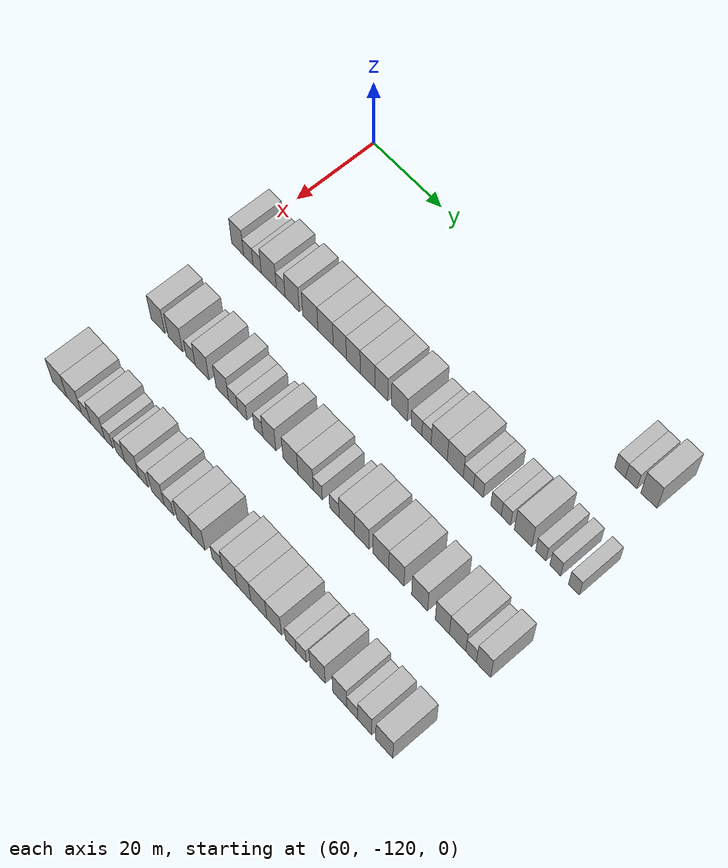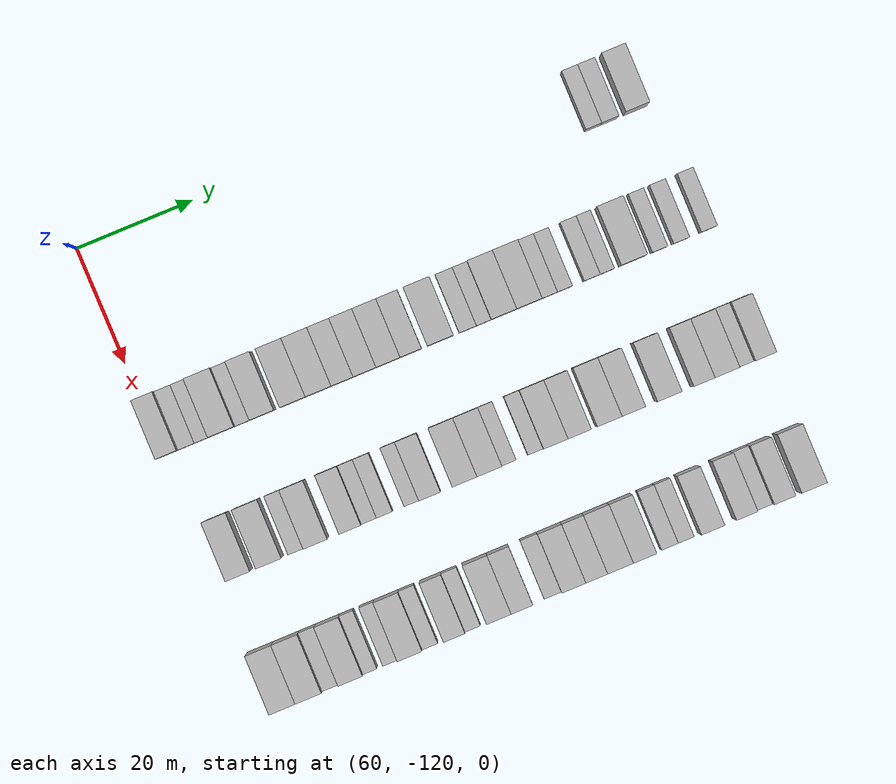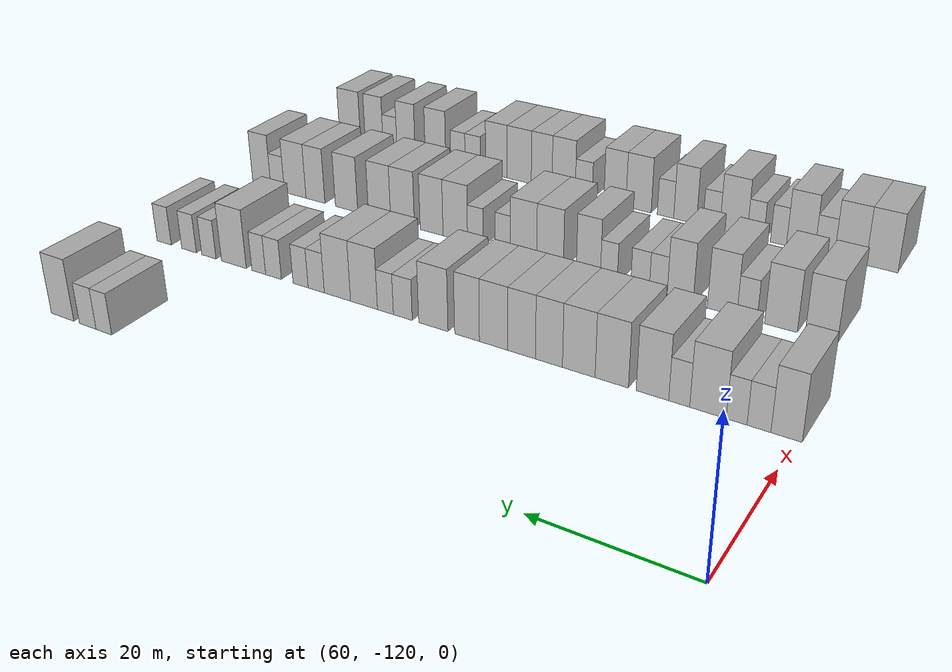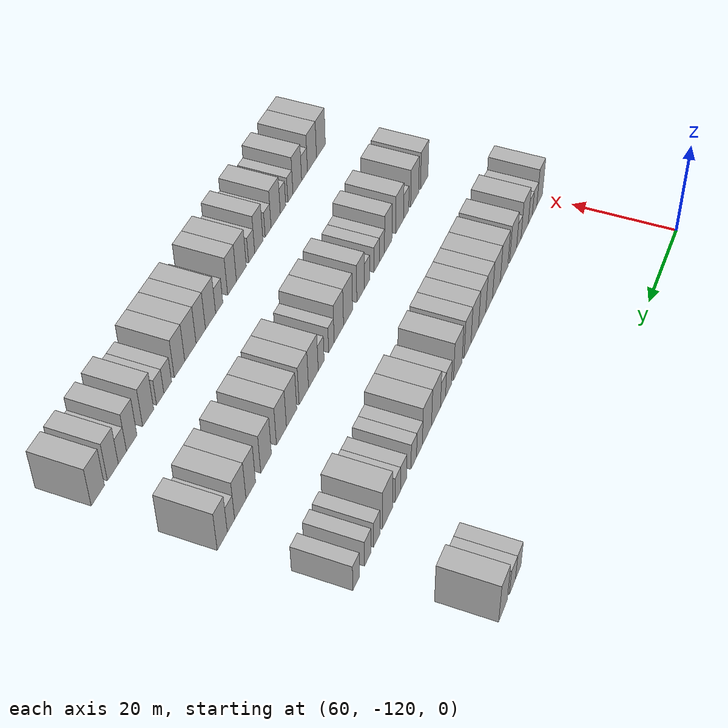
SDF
<sdf version="1.6">
 <world name="default">
  <model name="building_479">
   <static>1</static>
   <pose>69.0000 -36.6768 0 0.000000 0.000000 0.000000</pose>
   <link name="link">
    <pose>0 0 3.00 0 0 0</pose>
    <collision name="collision"><geometry><box><size>10.0000 2.7425 6.0000</size></box></geometry></collision>
    <visual name="visual">
     <cast_shadows>0</cast_shadows>
     <geometry><box><size>10.0000 2.7425 6.0000</size></box></geometry>
     <material>
      <script>
       <uri>model://HANNAS_wall/materials/scripts</uri>
       <uri>model://HANNAS_wall/materials/textures</uri>
       <name>vrc/HANNAS_wall</name>
      </script>
     </material>
    </visual>
   </link>
  </model>
  <model name="building_480">
   <static>1</static>
   <pose>69.0000 -33.8319 0 0.000000 0.000000 0.000000</pose>
   <link name="link">
    <pose>0 0 3.00 0 0 0</pose>
    <collision name="collision"><geometry><box><size>10.0000 2.9474 6.0000</size></box></geometry></collision>
    <visual name="visual">
     <cast_shadows>0</cast_shadows>
     <geometry><box><size>10.0000 2.9474 6.0000</size></box></geometry>
     <material>
      <script>
       <uri>model://HANNAS_wall/materials/scripts</uri>
       <uri>model://HANNAS_wall/materials/textures</uri>
       <name>vrc/HANNAS_wall</name>
      </script>
     </material>
    </visual>
   </link>
  </model>
  <model name="building_481">
   <static>1</static>
   <pose>69.0000 -29.3113 0 0.000000 0.000000 0.000000</pose>
   <link name="link">
    <pose>0 0 4.50 0 0 0</pose>
    <collision name="collision"><geometry><box><size>10.0000 4.0937 9.0000</size></box></geometry></collision>
    <visual name="visual">
     <cast_shadows>0</cast_shadows>
     <geometry><box><size>10.0000 4.0937 9.0000</size></box></geometry>
     <material>
      <script>
       <uri>model://HANNAS_wall/materials/scripts</uri>
       <uri>model://HANNAS_wall/materials/textures</uri>
       <name>vrc/HANNAS_wall</name>
      </script>
     </material>
    </visual>
   </link>
  </model>
  <model name="building_636">
   <static>1</static>
   <pose>91.0000 -118.8752 0 0.000000 0.000000 0.000000</pose>
   <link name="link">
    <pose>0 0 4.50 0 0 0</pose>
    <collision name="collision"><geometry><box><size>10.0000 3.6284 9.0000</size></box></geometry></collision>
    <visual name="visual">
     <cast_shadows>0</cast_shadows>
     <geometry><box><size>10.0000 3.6284 9.0000</size></box></geometry>
     <material>
      <script>
       <uri>model://HANNAS_wall/materials/scripts</uri>
       <uri>model://HANNAS_wall/materials/textures</uri>
       <name>vrc/HANNAS_wall</name>
      </script>
     </material>
    </visual>
   </link>
  </model>
  <model name="building_637">
   <static>1</static>
   <pose>91.0000 -115.6536 0 0.000000 0.000000 0.000000</pose>
   <link name="link">
    <pose>0 0 3.00 0 0 0</pose>
    <collision name="collision"><geometry><box><size>10.0000 2.8148 6.0000</size></box></geometry></collision>
    <visual name="visual">
     <cast_shadows>0</cast_shadows>
     <geometry><box><size>10.0000 2.8148 6.0000</size></box></geometry>
     <material>
      <script>
       <uri>model://HANNAS_wall/materials/scripts</uri>
       <uri>model://HANNAS_wall/materials/textures</uri>
       <name>vrc/HANNAS_wall</name>
      </script>
     </material>
    </visual>
   </link>
  </model>
  <model name="building_638">
   <static>1</static>
   <pose>91.0000 -113.0004 0 0.000000 0.000000 0.000000</pose>
   <link name="link">
    <pose>0 0 3.00 0 0 0</pose>
    <collision name="collision"><geometry><box><size>10.0000 2.4915 6.0000</size></box></geometry></collision>
    <visual name="visual">
     <cast_shadows>0</cast_shadows>
     <geometry><box><size>10.0000 2.4915 6.0000</size></box></geometry>
     <material>
      <script>
       <uri>model://HANNAS_wall/materials/scripts</uri>
       <uri>model://HANNAS_wall/materials/textures</uri>
       <name>vrc/HANNAS_wall</name>
      </script>
     </material>
    </visual>
   </link>
  </model>
  <model name="building_639">
   <static>1</static>
   <pose>91.0000 -109.5218 0 0.000000 0.000000 0.000000</pose>
   <link name="link">
    <pose>0 0 4.50 0 0 0</pose>
    <collision name="collision"><geometry><box><size>10.0000 4.4657 9.0000</size></box></geometry></collision>
    <visual name="visual">
     <cast_shadows>0</cast_shadows>
     <geometry><box><size>10.0000 4.4657 9.0000</size></box></geometry>
     <material>
      <script>
       <uri>model://HANNAS_wall/materials/scripts</uri>
       <uri>model://HANNAS_wall/materials/textures</uri>
       <name>vrc/HANNAS_wall</name>
      </script>
     </material>
    </visual>
   </link>
  </model>
  <model name="building_640">
   <static>1</static>
   <pose>91.0000 -105.9780 0 0.000000 0.000000 0.000000</pose>
   <link name="link">
    <pose>0 0 3.00 0 0 0</pose>
    <collision name="collision"><geometry><box><size>10.0000 2.6220 6.0000</size></box></geometry></collision>
    <visual name="visual">
     <cast_shadows>0</cast_shadows>
     <geometry><box><size>10.0000 2.6220 6.0000</size></box></geometry>
     <material>
      <script>
       <uri>model://HANNAS_wall/materials/scripts</uri>
       <uri>model://HANNAS_wall/materials/textures</uri>
       <name>vrc/HANNAS_wall</name>
      </script>
     </material>
    </visual>
   </link>
  </model>
  <model name="building_641">
   <static>1</static>
   <pose>91.0000 -102.5913 0 0.000000 0.000000 0.000000</pose>
   <link name="link">
    <pose>0 0 4.50 0 0 0</pose>
    <collision name="collision"><geometry><box><size>10.0000 4.1512 9.0000</size></box></geometry></collision>
    <visual name="visual">
     <cast_shadows>0</cast_shadows>
     <geometry><box><size>10.0000 4.1512 9.0000</size></box></geometry>
     <material>
      <script>
       <uri>model://HANNAS_wall/materials/scripts</uri>
       <uri>model://HANNAS_wall/materials/textures</uri>
       <name>vrc/HANNAS_wall</name>
      </script>
     </material>
    </visual>
   </link>
  </model>
  <model name="building_642">
   <static>1</static>
   <pose>91.0000 -97.3191 0 0.000000 0.000000 0.000000</pose>
   <link name="link">
    <pose>0 0 4.50 0 0 0</pose>
    <collision name="collision"><geometry><box><size>10.0000 4.3933 9.0000</size></box></geometry></collision>
    <visual name="visual">
     <cast_shadows>0</cast_shadows>
     <geometry><box><size>10.0000 4.3933 9.0000</size></box></geometry>
     <material>
      <script>
       <uri>model://HANNAS_wall/materials/scripts</uri>
       <uri>model://HANNAS_wall/materials/textures</uri>
       <name>vrc/HANNAS_wall</name>
      </script>
     </material>
    </visual>
   </link>
  </model>
  <model name="building_643">
   <static>1</static>
   <pose>91.0000 -92.9194 0 0.000000 0.000000 0.000000</pose>
   <link name="link">
    <pose>0 0 4.50 0 0 0</pose>
    <collision name="collision"><geometry><box><size>10.0000 4.4061 9.0000</size></box></geometry></collision>
    <visual name="visual">
     <cast_shadows>0</cast_shadows>
     <geometry><box><size>10.0000 4.4061 9.0000</size></box></geometry>
     <material>
      <script>
       <uri>model://HANNAS_wall/materials/scripts</uri>
       <uri>model://HANNAS_wall/materials/textures</uri>
       <name>vrc/HANNAS_wall</name>
      </script>
     </material>
    </visual>
   </link>
  </model>
  <model name="building_644">
   <static>1</static>
   <pose>91.0000 -88.8461 0 0.000000 0.000000 0.000000</pose>
   <link name="link">
    <pose>0 0 4.50 0 0 0</pose>
    <collision name="collision"><geometry><box><size>10.0000 3.7405 9.0000</size></box></geometry></collision>
    <visual name="visual">
     <cast_shadows>0</cast_shadows>
     <geometry><box><size>10.0000 3.7405 9.0000</size></box></geometry>
     <material>
      <script>
       <uri>model://HANNAS_wall/materials/scripts</uri>
       <uri>model://HANNAS_wall/materials/textures</uri>
       <name>vrc/HANNAS_wall</name>
      </script>
     </material>
    </visual>
   </link>
  </model>
  <model name="building_645">
   <static>1</static>
   <pose>91.0000 -85.0175 0 0.000000 0.000000 0.000000</pose>
   <link name="link">
    <pose>0 0 4.50 0 0 0</pose>
    <collision name="collision"><geometry><box><size>10.0000 3.9166 9.0000</size></box></geometry></collision>
    <visual name="visual">
     <cast_shadows>0</cast_shadows>
     <geometry><box><size>10.0000 3.9166 9.0000</size></box></geometry>
     <material>
      <script>
       <uri>model://HANNAS_wall/materials/scripts</uri>
       <uri>model://HANNAS_wall/materials/textures</uri>
       <name>vrc/HANNAS_wall</name>
      </script>
     </material>
    </visual>
   </link>
  </model>
  <model name="building_646">
   <static>1</static>
   <pose>91.0000 -81.0144 0 0.000000 0.000000 0.000000</pose>
   <link name="link">
    <pose>0 0 4.50 0 0 0</pose>
    <collision name="collision"><geometry><box><size>10.0000 4.0896 9.0000</size></box></geometry></collision>
    <visual name="visual">
     <cast_shadows>0</cast_shadows>
     <geometry><box><size>10.0000 4.0896 9.0000</size></box></geometry>
     <material>
      <script>
       <uri>model://HANNAS_wall/materials/scripts</uri>
       <uri>model://HANNAS_wall/materials/textures</uri>
       <name>vrc/HANNAS_wall</name>
      </script>
     </material>
    </visual>
   </link>
  </model>
  <model name="building_647">
   <static>1</static>
   <pose>91.0000 -77.1487 0 0.000000 0.000000 0.000000</pose>
   <link name="link">
    <pose>0 0 4.50 0 0 0</pose>
    <collision name="collision"><geometry><box><size>10.0000 3.6418 9.0000</size></box></geometry></collision>
    <visual name="visual">
     <cast_shadows>0</cast_shadows>
     <geometry><box><size>10.0000 3.6418 9.0000</size></box></geometry>
     <material>
      <script>
       <uri>model://HANNAS_wall/materials/scripts</uri>
       <uri>model://HANNAS_wall/materials/textures</uri>
       <name>vrc/HANNAS_wall</name>
      </script>
     </material>
    </visual>
   </link>
  </model>
  <model name="building_648">
   <static>1</static>
   <pose>91.0000 -72.1055 0 0.000000 0.000000 0.000000</pose>
   <link name="link">
    <pose>0 0 4.50 0 0 0</pose>
    <collision name="collision"><geometry><box><size>10.0000 4.4446 9.0000</size></box></geometry></collision>
    <visual name="visual">
     <cast_shadows>0</cast_shadows>
     <geometry><box><size>10.0000 4.4446 9.0000</size></box></geometry>
     <material>
      <script>
       <uri>model://HANNAS_wall/materials/scripts</uri>
       <uri>model://HANNAS_wall/materials/textures</uri>
       <name>vrc/HANNAS_wall</name>
      </script>
     </material>
    </visual>
   </link>
  </model>
  <model name="building_649">
   <static>1</static>
   <pose>91.0000 -67.4160 0 0.000000 0.000000 0.000000</pose>
   <link name="link">
    <pose>0 0 3.00 0 0 0</pose>
    <collision name="collision"><geometry><box><size>10.0000 2.9343 6.0000</size></box></geometry></collision>
    <visual name="visual">
     <cast_shadows>0</cast_shadows>
     <geometry><box><size>10.0000 2.9343 6.0000</size></box></geometry>
     <material>
      <script>
       <uri>model://HANNAS_wall/materials/scripts</uri>
       <uri>model://HANNAS_wall/materials/textures</uri>
       <name>vrc/HANNAS_wall</name>
      </script>
     </material>
    </visual>
   </link>
  </model>
  <model name="building_650">
   <static>1</static>
   <pose>91.0000 -64.6864 0 0.000000 0.000000 0.000000</pose>
   <link name="link">
    <pose>0 0 3.00 0 0 0</pose>
    <collision name="collision"><geometry><box><size>10.0000 2.5249 6.0000</size></box></geometry></collision>
    <visual name="visual">
     <cast_shadows>0</cast_shadows>
     <geometry><box><size>10.0000 2.5249 6.0000</size></box></geometry>
     <material>
      <script>
       <uri>model://HANNAS_wall/materials/scripts</uri>
       <uri>model://HANNAS_wall/materials/textures</uri>
       <name>vrc/HANNAS_wall</name>
      </script>
     </material>
    </visual>
   </link>
  </model>
  <model name="building_651">
   <static>1</static>
   <pose>91.0000 -61.2576 0 0.000000 0.000000 0.000000</pose>
   <link name="link">
    <pose>0 0 4.50 0 0 0</pose>
    <collision name="collision"><geometry><box><size>10.0000 4.3327 9.0000</size></box></geometry></collision>
    <visual name="visual">
     <cast_shadows>0</cast_shadows>
     <geometry><box><size>10.0000 4.3327 9.0000</size></box></geometry>
     <material>
      <script>
       <uri>model://HANNAS_wall/materials/scripts</uri>
       <uri>model://HANNAS_wall/materials/textures</uri>
       <name>vrc/HANNAS_wall</name>
      </script>
     </material>
    </visual>
   </link>
  </model>
  <model name="building_652">
   <static>1</static>
   <pose>91.0000 -56.9258 0 0.000000 0.000000 0.000000</pose>
   <link name="link">
    <pose>0 0 4.50 0 0 0</pose>
    <collision name="collision"><geometry><box><size>10.0000 4.3310 9.0000</size></box></geometry></collision>
    <visual name="visual">
     <cast_shadows>0</cast_shadows>
     <geometry><box><size>10.0000 4.3310 9.0000</size></box></geometry>
     <material>
      <script>
       <uri>model://HANNAS_wall/materials/scripts</uri>
       <uri>model://HANNAS_wall/materials/textures</uri>
       <name>vrc/HANNAS_wall</name>
      </script>
     </material>
    </visual>
   </link>
  </model>
  <model name="building_653">
   <static>1</static>
   <pose>91.0000 -53.4036 0 0.000000 0.000000 0.000000</pose>
   <link name="link">
    <pose>0 0 3.00 0 0 0</pose>
    <collision name="collision"><geometry><box><size>10.0000 2.7133 6.0000</size></box></geometry></collision>
    <visual name="visual">
     <cast_shadows>0</cast_shadows>
     <geometry><box><size>10.0000 2.7133 6.0000</size></box></geometry>
     <material>
      <script>
       <uri>model://HANNAS_wall/materials/scripts</uri>
       <uri>model://HANNAS_wall/materials/textures</uri>
       <name>vrc/HANNAS_wall</name>
      </script>
     </material>
    </visual>
   </link>
  </model>
  <model name="building_654">
   <static>1</static>
   <pose>91.0000 -50.7612 0 0.000000 0.000000 0.000000</pose>
   <link name="link">
    <pose>0 0 3.00 0 0 0</pose>
    <collision name="collision"><geometry><box><size>10.0000 2.5716 6.0000</size></box></geometry></collision>
    <visual name="visual">
     <cast_shadows>0</cast_shadows>
     <geometry><box><size>10.0000 2.5716 6.0000</size></box></geometry>
     <material>
      <script>
       <uri>model://HANNAS_wall/materials/scripts</uri>
       <uri>model://HANNAS_wall/materials/textures</uri>
       <name>vrc/HANNAS_wall</name>
      </script>
     </material>
    </visual>
   </link>
  </model>
  <model name="building_655">
   <static>1</static>
   <pose>91.0000 -46.0979 0 0.000000 0.000000 0.000000</pose>
   <link name="link">
    <pose>0 0 3.00 0 0 0</pose>
    <collision name="collision"><geometry><box><size>10.0000 2.7552 6.0000</size></box></geometry></collision>
    <visual name="visual">
     <cast_shadows>0</cast_shadows>
     <geometry><box><size>10.0000 2.7552 6.0000</size></box></geometry>
     <material>
      <script>
       <uri>model://HANNAS_wall/materials/scripts</uri>
       <uri>model://HANNAS_wall/materials/textures</uri>
       <name>vrc/HANNAS_wall</name>
      </script>
     </material>
    </visual>
   </link>
  </model>
  <model name="building_656">
   <static>1</static>
   <pose>91.0000 -43.5062 0 0.000000 0.000000 0.000000</pose>
   <link name="link">
    <pose>0 0 3.00 0 0 0</pose>
    <collision name="collision"><geometry><box><size>10.0000 2.4282 6.0000</size></box></geometry></collision>
    <visual name="visual">
     <cast_shadows>0</cast_shadows>
     <geometry><box><size>10.0000 2.4282 6.0000</size></box></geometry>
     <material>
      <script>
       <uri>model://HANNAS_wall/materials/scripts</uri>
       <uri>model://HANNAS_wall/materials/textures</uri>
       <name>vrc/HANNAS_wall</name>
      </script>
     </material>
    </visual>
   </link>
  </model>
  <model name="building_657">
   <static>1</static>
   <pose>91.0000 -39.0481 0 0.000000 0.000000 0.000000</pose>
   <link name="link">
    <pose>0 0 4.50 0 0 0</pose>
    <collision name="collision"><geometry><box><size>10.0000 4.4879 9.0000</size></box></geometry></collision>
    <visual name="visual">
     <cast_shadows>0</cast_shadows>
     <geometry><box><size>10.0000 4.4879 9.0000</size></box></geometry>
     <material>
      <script>
       <uri>model://HANNAS_wall/materials/scripts</uri>
       <uri>model://HANNAS_wall/materials/textures</uri>
       <name>vrc/HANNAS_wall</name>
      </script>
     </material>
    </visual>
   </link>
  </model>
  <model name="building_658">
   <static>1</static>
   <pose>91.0000 -34.4827 0 0.000000 0.000000 0.000000</pose>
   <link name="link">
    <pose>0 0 3.00 0 0 0</pose>
    <collision name="collision"><geometry><box><size>10.0000 2.6431 6.0000</size></box></geometry></collision>
    <visual name="visual">
     <cast_shadows>0</cast_shadows>
     <geometry><box><size>10.0000 2.6431 6.0000</size></box></geometry>
     <material>
      <script>
       <uri>model://HANNAS_wall/materials/scripts</uri>
       <uri>model://HANNAS_wall/materials/textures</uri>
       <name>vrc/HANNAS_wall</name>
      </script>
     </material>
    </visual>
   </link>
  </model>
  <model name="building_659">
   <static>1</static>
   <pose>91.0000 -30.7878 0 0.000000 0.000000 0.000000</pose>
   <link name="link">
    <pose>0 0 3.00 0 0 0</pose>
    <collision name="collision"><geometry><box><size>10.0000 2.7466 6.0000</size></box></geometry></collision>
    <visual name="visual">
     <cast_shadows>0</cast_shadows>
     <geometry><box><size>10.0000 2.7466 6.0000</size></box></geometry>
     <material>
      <script>
       <uri>model://HANNAS_wall/materials/scripts</uri>
       <uri>model://HANNAS_wall/materials/textures</uri>
       <name>vrc/HANNAS_wall</name>
      </script>
     </material>
    </visual>
   </link>
  </model>
  <model name="building_660">
   <static>1</static>
   <pose>91.0000 -26.0449 0 0.000000 0.000000 0.000000</pose>
   <link name="link">
    <pose>0 0 3.00 0 0 0</pose>
    <collision name="collision"><geometry><box><size>10.0000 2.7392 6.0000</size></box></geometry></collision>
    <visual name="visual">
     <cast_shadows>0</cast_shadows>
     <geometry><box><size>10.0000 2.7392 6.0000</size></box></geometry>
     <material>
      <script>
       <uri>model://HANNAS_wall/materials/scripts</uri>
       <uri>model://HANNAS_wall/materials/textures</uri>
       <name>vrc/HANNAS_wall</name>
      </script>
     </material>
    </visual>
   </link>
  </model>
  <model name="building_829">
   <static>1</static>
   <pose>113.0000 -115.8090 0 0.000000 0.000000 0.000000</pose>
   <link name="link">
    <pose>0 0 4.50 0 0 0</pose>
    <collision name="collision"><geometry><box><size>10.0000 4.1792 9.0000</size></box></geometry></collision>
    <visual name="visual">
     <cast_shadows>0</cast_shadows>
     <geometry><box><size>10.0000 4.1792 9.0000</size></box></geometry>
     <material>
      <script>
       <uri>model://HANNAS_wall/materials/scripts</uri>
       <uri>model://HANNAS_wall/materials/textures</uri>
       <name>vrc/HANNAS_wall</name>
      </script>
     </material>
    </visual>
   </link>
  </model>
  <model name="building_830">
   <static>1</static>
   <pose>113.0000 -110.5417 0 0.000000 0.000000 0.000000</pose>
   <link name="link">
    <pose>0 0 4.50 0 0 0</pose>
    <collision name="collision"><geometry><box><size>10.0000 4.3555 9.0000</size></box></geometry></collision>
    <visual name="visual">
     <cast_shadows>0</cast_shadows>
     <geometry><box><size>10.0000 4.3555 9.0000</size></box></geometry>
     <material>
      <script>
       <uri>model://HANNAS_wall/materials/scripts</uri>
       <uri>model://HANNAS_wall/materials/textures</uri>
       <name>vrc/HANNAS_wall</name>
      </script>
     </material>
    </visual>
   </link>
  </model>
  <model name="building_831">
   <static>1</static>
   <pose>113.0000 -105.9945 0 0.000000 0.000000 0.000000</pose>
   <link name="link">
    <pose>0 0 3.00 0 0 0</pose>
    <collision name="collision"><geometry><box><size>10.0000 2.7388 6.0000</size></box></geometry></collision>
    <visual name="visual">
     <cast_shadows>0</cast_shadows>
     <geometry><box><size>10.0000 2.7388 6.0000</size></box></geometry>
     <material>
      <script>
       <uri>model://HANNAS_wall/materials/scripts</uri>
       <uri>model://HANNAS_wall/materials/textures</uri>
       <name>vrc/HANNAS_wall</name>
      </script>
     </material>
    </visual>
   </link>
  </model>
  <model name="building_832">
   <static>1</static>
   <pose>113.0000 -102.5790 0 0.000000 0.000000 0.000000</pose>
   <link name="link">
    <pose>0 0 4.50 0 0 0</pose>
    <collision name="collision"><geometry><box><size>10.0000 4.0920 9.0000</size></box></geometry></collision>
    <visual name="visual">
     <cast_shadows>0</cast_shadows>
     <geometry><box><size>10.0000 4.0920 9.0000</size></box></geometry>
     <material>
      <script>
       <uri>model://HANNAS_wall/materials/scripts</uri>
       <uri>model://HANNAS_wall/materials/textures</uri>
       <name>vrc/HANNAS_wall</name>
      </script>
     </material>
    </visual>
   </link>
  </model>
  <model name="building_833">
   <static>1</static>
   <pose>113.0000 -96.6682 0 0.000000 0.000000 0.000000</pose>
   <link name="link">
    <pose>0 0 4.50 0 0 0</pose>
    <collision name="collision"><geometry><box><size>10.0000 3.7296 9.0000</size></box></geometry></collision>
    <visual name="visual">
     <cast_shadows>0</cast_shadows>
     <geometry><box><size>10.0000 3.7296 9.0000</size></box></geometry>
     <material>
      <script>
       <uri>model://HANNAS_wall/materials/scripts</uri>
       <uri>model://HANNAS_wall/materials/textures</uri>
       <name>vrc/HANNAS_wall</name>
      </script>
     </material>
    </visual>
   </link>
  </model>
  <model name="building_834">
   <static>1</static>
   <pose>113.0000 -93.5089 0 0.000000 0.000000 0.000000</pose>
   <link name="link">
    <pose>0 0 3.00 0 0 0</pose>
    <collision name="collision"><geometry><box><size>10.0000 2.5890 6.0000</size></box></geometry></collision>
    <visual name="visual">
     <cast_shadows>0</cast_shadows>
     <geometry><box><size>10.0000 2.5890 6.0000</size></box></geometry>
     <material>
      <script>
       <uri>model://HANNAS_wall/materials/scripts</uri>
       <uri>model://HANNAS_wall/materials/textures</uri>
       <name>vrc/HANNAS_wall</name>
      </script>
     </material>
    </visual>
   </link>
  </model>
  <model name="building_835">
   <static>1</static>
   <pose>113.0000 -90.8488 0 0.000000 0.000000 0.000000</pose>
   <link name="link">
    <pose>0 0 3.00 0 0 0</pose>
    <collision name="collision"><geometry><box><size>10.0000 2.7312 6.0000</size></box></geometry></collision>
    <visual name="visual">
     <cast_shadows>0</cast_shadows>
     <geometry><box><size>10.0000 2.7312 6.0000</size></box></geometry>
     <material>
      <script>
       <uri>model://HANNAS_wall/materials/scripts</uri>
       <uri>model://HANNAS_wall/materials/textures</uri>
       <name>vrc/HANNAS_wall</name>
      </script>
     </material>
    </visual>
   </link>
  </model>
  <model name="building_836">
   <static>1</static>
   <pose>113.0000 -86.2087 0 0.000000 0.000000 0.000000</pose>
   <link name="link">
    <pose>0 0 3.00 0 0 0</pose>
    <collision name="collision"><geometry><box><size>10.0000 2.5492 6.0000</size></box></geometry></collision>
    <visual name="visual">
     <cast_shadows>0</cast_shadows>
     <geometry><box><size>10.0000 2.5492 6.0000</size></box></geometry>
     <material>
      <script>
       <uri>model://HANNAS_wall/materials/scripts</uri>
       <uri>model://HANNAS_wall/materials/textures</uri>
       <name>vrc/HANNAS_wall</name>
      </script>
     </material>
    </visual>
   </link>
  </model>
  <model name="building_837">
   <static>1</static>
   <pose>113.0000 -83.0885 0 0.000000 0.000000 0.000000</pose>
   <link name="link">
    <pose>0 0 4.50 0 0 0</pose>
    <collision name="collision"><geometry><box><size>10.0000 3.6912 9.0000</size></box></geometry></collision>
    <visual name="visual">
     <cast_shadows>0</cast_shadows>
     <geometry><box><size>10.0000 3.6912 9.0000</size></box></geometry>
     <material>
      <script>
       <uri>model://HANNAS_wall/materials/scripts</uri>
       <uri>model://HANNAS_wall/materials/textures</uri>
       <name>vrc/HANNAS_wall</name>
      </script>
     </material>
    </visual>
   </link>
  </model>
  <model name="building_838">
   <static>1</static>
   <pose>113.0000 -77.1343 0 0.000000 0.000000 0.000000</pose>
   <link name="link">
    <pose>0 0 4.50 0 0 0</pose>
    <collision name="collision"><geometry><box><size>10.0000 4.2171 9.0000</size></box></geometry></collision>
    <visual name="visual">
     <cast_shadows>0</cast_shadows>
     <geometry><box><size>10.0000 4.2171 9.0000</size></box></geometry>
     <material>
      <script>
       <uri>model://HANNAS_wall/materials/scripts</uri>
       <uri>model://HANNAS_wall/materials/textures</uri>
       <name>vrc/HANNAS_wall</name>
      </script>
     </material>
    </visual>
   </link>
  </model>
  <model name="building_839">
   <static>1</static>
   <pose>113.0000 -72.8920 0 0.000000 0.000000 0.000000</pose>
   <link name="link">
    <pose>0 0 4.50 0 0 0</pose>
    <collision name="collision"><geometry><box><size>10.0000 4.2676 9.0000</size></box></geometry></collision>
    <visual name="visual">
     <cast_shadows>0</cast_shadows>
     <geometry><box><size>10.0000 4.2676 9.0000</size></box></geometry>
     <material>
      <script>
       <uri>model://HANNAS_wall/materials/scripts</uri>
       <uri>model://HANNAS_wall/materials/textures</uri>
       <name>vrc/HANNAS_wall</name>
      </script>
     </material>
    </visual>
   </link>
  </model>
  <model name="building_840">
   <static>1</static>
   <pose>113.0000 -69.5211 0 0.000000 0.000000 0.000000</pose>
   <link name="link">
    <pose>0 0 3.00 0 0 0</pose>
    <collision name="collision"><geometry><box><size>10.0000 2.4742 6.0000</size></box></geometry></collision>
    <visual name="visual">
     <cast_shadows>0</cast_shadows>
     <geometry><box><size>10.0000 2.4742 6.0000</size></box></geometry>
     <material>
      <script>
       <uri>model://HANNAS_wall/materials/scripts</uri>
       <uri>model://HANNAS_wall/materials/textures</uri>
       <name>vrc/HANNAS_wall</name>
      </script>
     </material>
    </visual>
   </link>
  </model>
  <model name="building_841">
   <static>1</static>
   <pose>113.0000 -64.9840 0 0.000000 0.000000 0.000000</pose>
   <link name="link">
    <pose>0 0 3.00 0 0 0</pose>
    <collision name="collision"><geometry><box><size>10.0000 2.5999 6.0000</size></box></geometry></collision>
    <visual name="visual">
     <cast_shadows>0</cast_shadows>
     <geometry><box><size>10.0000 2.5999 6.0000</size></box></geometry>
     <material>
      <script>
       <uri>model://HANNAS_wall/materials/scripts</uri>
       <uri>model://HANNAS_wall/materials/textures</uri>
       <name>vrc/HANNAS_wall</name>
      </script>
     </material>
    </visual>
   </link>
  </model>
  <model name="building_842">
   <static>1</static>
   <pose>113.0000 -61.5987 0 0.000000 0.000000 0.000000</pose>
   <link name="link">
    <pose>0 0 4.50 0 0 0</pose>
    <collision name="collision"><geometry><box><size>10.0000 4.1709 9.0000</size></box></geometry></collision>
    <visual name="visual">
     <cast_shadows>0</cast_shadows>
     <geometry><box><size>10.0000 4.1709 9.0000</size></box></geometry>
     <material>
      <script>
       <uri>model://HANNAS_wall/materials/scripts</uri>
       <uri>model://HANNAS_wall/materials/textures</uri>
       <name>vrc/HANNAS_wall</name>
      </script>
     </material>
    </visual>
   </link>
  </model>
  <model name="building_843">
   <static>1</static>
   <pose>113.0000 -57.5251 0 0.000000 0.000000 0.000000</pose>
   <link name="link">
    <pose>0 0 4.50 0 0 0</pose>
    <collision name="collision"><geometry><box><size>10.0000 3.9763 9.0000</size></box></geometry></collision>
    <visual name="visual">
     <cast_shadows>0</cast_shadows>
     <geometry><box><size>10.0000 3.9763 9.0000</size></box></geometry>
     <material>
      <script>
       <uri>model://HANNAS_wall/materials/scripts</uri>
       <uri>model://HANNAS_wall/materials/textures</uri>
       <name>vrc/HANNAS_wall</name>
      </script>
     </material>
    </visual>
   </link>
  </model>
  <model name="building_844">
   <static>1</static>
   <pose>113.0000 -52.4184 0 0.000000 0.000000 0.000000</pose>
   <link name="link">
    <pose>0 0 4.50 0 0 0</pose>
    <collision name="collision"><geometry><box><size>10.0000 4.2371 9.0000</size></box></geometry></collision>
    <visual name="visual">
     <cast_shadows>0</cast_shadows>
     <geometry><box><size>10.0000 4.2371 9.0000</size></box></geometry>
     <material>
      <script>
       <uri>model://HANNAS_wall/materials/scripts</uri>
       <uri>model://HANNAS_wall/materials/textures</uri>
       <name>vrc/HANNAS_wall</name>
      </script>
     </material>
    </visual>
   </link>
  </model>
  <model name="building_845">
   <static>1</static>
   <pose>113.0000 -48.2871 0 0.000000 0.000000 0.000000</pose>
   <link name="link">
    <pose>0 0 4.50 0 0 0</pose>
    <collision name="collision"><geometry><box><size>10.0000 4.0256 9.0000</size></box></geometry></collision>
    <visual name="visual">
     <cast_shadows>0</cast_shadows>
     <geometry><box><size>10.0000 4.0256 9.0000</size></box></geometry>
     <material>
      <script>
       <uri>model://HANNAS_wall/materials/scripts</uri>
       <uri>model://HANNAS_wall/materials/textures</uri>
       <name>vrc/HANNAS_wall</name>
      </script>
     </material>
    </visual>
   </link>
  </model>
  <model name="building_846">
   <static>1</static>
   <pose>113.0000 -42.1886 0 0.000000 0.000000 0.000000</pose>
   <link name="link">
    <pose>0 0 4.50 0 0 0</pose>
    <collision name="collision"><geometry><box><size>10.0000 4.1714 9.0000</size></box></geometry></collision>
    <visual name="visual">
     <cast_shadows>0</cast_shadows>
     <geometry><box><size>10.0000 4.1714 9.0000</size></box></geometry>
     <material>
      <script>
       <uri>model://HANNAS_wall/materials/scripts</uri>
       <uri>model://HANNAS_wall/materials/textures</uri>
       <name>vrc/HANNAS_wall</name>
      </script>
     </material>
    </visual>
   </link>
  </model>
  <model name="building_847">
   <static>1</static>
   <pose>113.0000 -36.2924 0 0.000000 0.000000 0.000000</pose>
   <link name="link">
    <pose>0 0 4.50 0 0 0</pose>
    <collision name="collision"><geometry><box><size>10.0000 3.6211 9.0000</size></box></geometry></collision>
    <visual name="visual">
     <cast_shadows>0</cast_shadows>
     <geometry><box><size>10.0000 3.6211 9.0000</size></box></geometry>
     <material>
      <script>
       <uri>model://HANNAS_wall/materials/scripts</uri>
       <uri>model://HANNAS_wall/materials/textures</uri>
       <name>vrc/HANNAS_wall</name>
      </script>
     </material>
    </visual>
   </link>
  </model>
  <model name="building_848">
   <static>1</static>
   <pose>113.0000 -32.3692 0 0.000000 0.000000 0.000000</pose>
   <link name="link">
    <pose>0 0 4.50 0 0 0</pose>
    <collision name="collision"><geometry><box><size>10.0000 4.2254 9.0000</size></box></geometry></collision>
    <visual name="visual">
     <cast_shadows>0</cast_shadows>
     <geometry><box><size>10.0000 4.2254 9.0000</size></box></geometry>
     <material>
      <script>
       <uri>model://HANNAS_wall/materials/scripts</uri>
       <uri>model://HANNAS_wall/materials/textures</uri>
       <name>vrc/HANNAS_wall</name>
      </script>
     </material>
    </visual>
   </link>
  </model>
  <model name="building_849">
   <static>1</static>
   <pose>113.0000 -28.9207 0 0.000000 0.000000 0.000000</pose>
   <link name="link">
    <pose>0 0 3.00 0 0 0</pose>
    <collision name="collision"><geometry><box><size>10.0000 2.6716 6.0000</size></box></geometry></collision>
    <visual name="visual">
     <cast_shadows>0</cast_shadows>
     <geometry><box><size>10.0000 2.6716 6.0000</size></box></geometry>
     <material>
      <script>
       <uri>model://HANNAS_wall/materials/scripts</uri>
       <uri>model://HANNAS_wall/materials/textures</uri>
       <name>vrc/HANNAS_wall</name>
      </script>
     </material>
    </visual>
   </link>
  </model>
  <model name="building_850">
   <static>1</static>
   <pose>113.0000 -25.7798 0 0.000000 0.000000 0.000000</pose>
   <link name="link">
    <pose>0 0 4.50 0 0 0</pose>
    <collision name="collision"><geometry><box><size>10.0000 3.6101 9.0000</size></box></geometry></collision>
    <visual name="visual">
     <cast_shadows>0</cast_shadows>
     <geometry><box><size>10.0000 3.6101 9.0000</size></box></geometry>
     <material>
      <script>
       <uri>model://HANNAS_wall/materials/scripts</uri>
       <uri>model://HANNAS_wall/materials/textures</uri>
       <name>vrc/HANNAS_wall</name>
      </script>
     </material>
    </visual>
   </link>
  </model>
  <model name="building_996">
   <static>1</static>
   <pose>135.0000 -117.3878 0 0.000000 0.000000 0.000000</pose>
   <link name="link">
    <pose>0 0 4.50 0 0 0</pose>
    <collision name="collision"><geometry><box><size>10.0000 4.4631 9.0000</size></box></geometry></collision>
    <visual name="visual">
     <cast_shadows>0</cast_shadows>
     <geometry><box><size>10.0000 4.4631 9.0000</size></box></geometry>
     <material>
      <script>
       <uri>model://HANNAS_wall/materials/scripts</uri>
       <uri>model://HANNAS_wall/materials/textures</uri>
       <name>vrc/HANNAS_wall</name>
      </script>
     </material>
    </visual>
   </link>
  </model>
  <model name="building_997">
   <static>1</static>
   <pose>135.0000 -112.9250 0 0.000000 0.000000 0.000000</pose>
   <link name="link">
    <pose>0 0 4.50 0 0 0</pose>
    <collision name="collision"><geometry><box><size>10.0000 4.4626 9.0000</size></box></geometry></collision>
    <visual name="visual">
     <cast_shadows>0</cast_shadows>
     <geometry><box><size>10.0000 4.4626 9.0000</size></box></geometry>
     <material>
      <script>
       <uri>model://HANNAS_wall/materials/scripts</uri>
       <uri>model://HANNAS_wall/materials/textures</uri>
       <name>vrc/HANNAS_wall</name>
      </script>
     </material>
    </visual>
   </link>
  </model>
  <model name="building_998">
   <static>1</static>
   <pose>135.0000 -109.2772 0 0.000000 0.000000 0.000000</pose>
   <link name="link">
    <pose>0 0 3.00 0 0 0</pose>
    <collision name="collision"><geometry><box><size>10.0000 2.8330 6.0000</size></box></geometry></collision>
    <visual name="visual">
     <cast_shadows>0</cast_shadows>
     <geometry><box><size>10.0000 2.8330 6.0000</size></box></geometry>
     <material>
      <script>
       <uri>model://HANNAS_wall/materials/scripts</uri>
       <uri>model://HANNAS_wall/materials/textures</uri>
       <name>vrc/HANNAS_wall</name>
      </script>
     </material>
    </visual>
   </link>
  </model>
  <model name="building_999">
   <static>1</static>
   <pose>135.0000 -105.7794 0 0.000000 0.000000 0.000000</pose>
   <link name="link">
    <pose>0 0 4.50 0 0 0</pose>
    <collision name="collision"><geometry><box><size>10.0000 4.1626 9.0000</size></box></geometry></collision>
    <visual name="visual">
     <cast_shadows>0</cast_shadows>
     <geometry><box><size>10.0000 4.1626 9.0000</size></box></geometry>
     <material>
      <script>
       <uri>model://HANNAS_wall/materials/scripts</uri>
       <uri>model://HANNAS_wall/materials/textures</uri>
       <name>vrc/HANNAS_wall</name>
      </script>
     </material>
    </visual>
   </link>
  </model>
  <model name="building_1000">
   <static>1</static>
   <pose>135.0000 -102.4946 0 0.000000 0.000000 0.000000</pose>
   <link name="link">
    <pose>0 0 3.00 0 0 0</pose>
    <collision name="collision"><geometry><box><size>10.0000 2.4070 6.0000</size></box></geometry></collision>
    <visual name="visual">
     <cast_shadows>0</cast_shadows>
     <geometry><box><size>10.0000 2.4070 6.0000</size></box></geometry>
     <material>
      <script>
       <uri>model://HANNAS_wall/materials/scripts</uri>
       <uri>model://HANNAS_wall/materials/textures</uri>
       <name>vrc/HANNAS_wall</name>
      </script>
     </material>
    </visual>
   </link>
  </model>
  <model name="building_1001">
   <static>1</static>
   <pose>135.0000 -99.0310 0 0.000000 0.000000 0.000000</pose>
   <link name="link">
    <pose>0 0 3.00 0 0 0</pose>
    <collision name="collision"><geometry><box><size>10.0000 2.5203 6.0000</size></box></geometry></collision>
    <visual name="visual">
     <cast_shadows>0</cast_shadows>
     <geometry><box><size>10.0000 2.5203 6.0000</size></box></geometry>
     <material>
      <script>
       <uri>model://HANNAS_wall/materials/scripts</uri>
       <uri>model://HANNAS_wall/materials/textures</uri>
       <name>vrc/HANNAS_wall</name>
      </script>
     </material>
    </visual>
   </link>
  </model>
  <model name="building_1002">
   <static>1</static>
   <pose>135.0000 -95.6624 0 0.000000 0.000000 0.000000</pose>
   <link name="link">
    <pose>0 0 4.50 0 0 0</pose>
    <collision name="collision"><geometry><box><size>10.0000 4.2170 9.0000</size></box></geometry></collision>
    <visual name="visual">
     <cast_shadows>0</cast_shadows>
     <geometry><box><size>10.0000 4.2170 9.0000</size></box></geometry>
     <material>
      <script>
       <uri>model://HANNAS_wall/materials/scripts</uri>
       <uri>model://HANNAS_wall/materials/textures</uri>
       <name>vrc/HANNAS_wall</name>
      </script>
     </material>
    </visual>
   </link>
  </model>
  <model name="building_1003">
   <static>1</static>
   <pose>135.0000 -92.2228 0 0.000000 0.000000 0.000000</pose>
   <link name="link">
    <pose>0 0 3.00 0 0 0</pose>
    <collision name="collision"><geometry><box><size>10.0000 2.6622 6.0000</size></box></geometry></collision>
    <visual name="visual">
     <cast_shadows>0</cast_shadows>
     <geometry><box><size>10.0000 2.6622 6.0000</size></box></geometry>
     <material>
      <script>
       <uri>model://HANNAS_wall/materials/scripts</uri>
       <uri>model://HANNAS_wall/materials/textures</uri>
       <name>vrc/HANNAS_wall</name>
      </script>
     </material>
    </visual>
   </link>
  </model>
  <model name="building_1004">
   <static>1</static>
   <pose>135.0000 -88.0642 0 0.000000 0.000000 0.000000</pose>
   <link name="link">
    <pose>0 0 4.50 0 0 0</pose>
    <collision name="collision"><geometry><box><size>10.0000 3.6551 9.0000</size></box></geometry></collision>
    <visual name="visual">
     <cast_shadows>0</cast_shadows>
     <geometry><box><size>10.0000 3.6551 9.0000</size></box></geometry>
     <material>
      <script>
       <uri>model://HANNAS_wall/materials/scripts</uri>
       <uri>model://HANNAS_wall/materials/textures</uri>
       <name>vrc/HANNAS_wall</name>
      </script>
     </material>
    </visual>
   </link>
  </model>
  <model name="building_1005">
   <static>1</static>
   <pose>135.0000 -84.9040 0 0.000000 0.000000 0.000000</pose>
   <link name="link">
    <pose>0 0 3.00 0 0 0</pose>
    <collision name="collision"><geometry><box><size>10.0000 2.6652 6.0000</size></box></geometry></collision>
    <visual name="visual">
     <cast_shadows>0</cast_shadows>
     <geometry><box><size>10.0000 2.6652 6.0000</size></box></geometry>
     <material>
      <script>
       <uri>model://HANNAS_wall/materials/scripts</uri>
       <uri>model://HANNAS_wall/materials/textures</uri>
       <name>vrc/HANNAS_wall</name>
      </script>
     </material>
    </visual>
   </link>
  </model>
  <model name="building_1006">
   <static>1</static>
   <pose>135.0000 -80.4678 0 0.000000 0.000000 0.000000</pose>
   <link name="link">
    <pose>0 0 4.50 0 0 0</pose>
    <collision name="collision"><geometry><box><size>10.0000 4.2072 9.0000</size></box></geometry></collision>
    <visual name="visual">
     <cast_shadows>0</cast_shadows>
     <geometry><box><size>10.0000 4.2072 9.0000</size></box></geometry>
     <material>
      <script>
       <uri>model://HANNAS_wall/materials/scripts</uri>
       <uri>model://HANNAS_wall/materials/textures</uri>
       <name>vrc/HANNAS_wall</name>
      </script>
     </material>
    </visual>
   </link>
  </model>
  <model name="building_1007">
   <static>1</static>
   <pose>135.0000 -76.5147 0 0.000000 0.000000 0.000000</pose>
   <link name="link">
    <pose>0 0 4.50 0 0 0</pose>
    <collision name="collision"><geometry><box><size>10.0000 3.6989 9.0000</size></box></geometry></collision>
    <visual name="visual">
     <cast_shadows>0</cast_shadows>
     <geometry><box><size>10.0000 3.6989 9.0000</size></box></geometry>
     <material>
      <script>
       <uri>model://HANNAS_wall/materials/scripts</uri>
       <uri>model://HANNAS_wall/materials/textures</uri>
       <name>vrc/HANNAS_wall</name>
      </script>
     </material>
    </visual>
   </link>
  </model>
  <model name="building_1008">
   <static>1</static>
   <pose>135.0000 -71.1968 0 0.000000 0.000000 0.000000</pose>
   <link name="link">
    <pose>0 0 3.00 0 0 0</pose>
    <collision name="collision"><geometry><box><size>10.0000 2.9370 6.0000</size></box></geometry></collision>
    <visual name="visual">
     <cast_shadows>0</cast_shadows>
     <geometry><box><size>10.0000 2.9370 6.0000</size></box></geometry>
     <material>
      <script>
       <uri>model://HANNAS_wall/materials/scripts</uri>
       <uri>model://HANNAS_wall/materials/textures</uri>
       <name>vrc/HANNAS_wall</name>
      </script>
     </material>
    </visual>
   </link>
  </model>
  <model name="building_1009">
   <static>1</static>
   <pose>135.0000 -67.6817 0 0.000000 0.000000 0.000000</pose>
   <link name="link">
    <pose>0 0 4.50 0 0 0</pose>
    <collision name="collision"><geometry><box><size>10.0000 4.0931 9.0000</size></box></geometry></collision>
    <visual name="visual">
     <cast_shadows>0</cast_shadows>
     <geometry><box><size>10.0000 4.0931 9.0000</size></box></geometry>
     <material>
      <script>
       <uri>model://HANNAS_wall/materials/scripts</uri>
       <uri>model://HANNAS_wall/materials/textures</uri>
       <name>vrc/HANNAS_wall</name>
      </script>
     </material>
    </visual>
   </link>
  </model>
  <model name="building_1010">
   <static>1</static>
   <pose>135.0000 -63.7786 0 0.000000 0.000000 0.000000</pose>
   <link name="link">
    <pose>0 0 4.50 0 0 0</pose>
    <collision name="collision"><geometry><box><size>10.0000 3.7130 9.0000</size></box></geometry></collision>
    <visual name="visual">
     <cast_shadows>0</cast_shadows>
     <geometry><box><size>10.0000 3.7130 9.0000</size></box></geometry>
     <material>
      <script>
       <uri>model://HANNAS_wall/materials/scripts</uri>
       <uri>model://HANNAS_wall/materials/textures</uri>
       <name>vrc/HANNAS_wall</name>
      </script>
     </material>
    </visual>
   </link>
  </model>
  <model name="building_1011">
   <static>1</static>
   <pose>135.0000 -59.7292 0 0.000000 0.000000 0.000000</pose>
   <link name="link">
    <pose>0 0 4.50 0 0 0</pose>
    <collision name="collision"><geometry><box><size>10.0000 4.3859 9.0000</size></box></geometry></collision>
    <visual name="visual">
     <cast_shadows>0</cast_shadows>
     <geometry><box><size>10.0000 4.3859 9.0000</size></box></geometry>
     <material>
      <script>
       <uri>model://HANNAS_wall/materials/scripts</uri>
       <uri>model://HANNAS_wall/materials/textures</uri>
       <name>vrc/HANNAS_wall</name>
      </script>
     </material>
    </visual>
   </link>
  </model>
  <model name="building_1012">
   <static>1</static>
   <pose>135.0000 -55.5445 0 0.000000 0.000000 0.000000</pose>
   <link name="link">
    <pose>0 0 4.50 0 0 0</pose>
    <collision name="collision"><geometry><box><size>10.0000 3.9834 9.0000</size></box></geometry></collision>
    <visual name="visual">
     <cast_shadows>0</cast_shadows>
     <geometry><box><size>10.0000 3.9834 9.0000</size></box></geometry>
     <material>
      <script>
       <uri>model://HANNAS_wall/materials/scripts</uri>
       <uri>model://HANNAS_wall/materials/textures</uri>
       <name>vrc/HANNAS_wall</name>
      </script>
     </material>
    </visual>
   </link>
  </model>
  <model name="building_1013">
   <static>1</static>
   <pose>135.0000 -51.1156 0 0.000000 0.000000 0.000000</pose>
   <link name="link">
    <pose>0 0 3.00 0 0 0</pose>
    <collision name="collision"><geometry><box><size>10.0000 2.8745 6.0000</size></box></geometry></collision>
    <visual name="visual">
     <cast_shadows>0</cast_shadows>
     <geometry><box><size>10.0000 2.8745 6.0000</size></box></geometry>
     <material>
      <script>
       <uri>model://HANNAS_wall/materials/scripts</uri>
       <uri>model://HANNAS_wall/materials/textures</uri>
       <name>vrc/HANNAS_wall</name>
      </script>
     </material>
    </visual>
   </link>
  </model>
  <model name="building_1014">
   <static>1</static>
   <pose>135.0000 -48.3200 0 0.000000 0.000000 0.000000</pose>
   <link name="link">
    <pose>0 0 3.00 0 0 0</pose>
    <collision name="collision"><geometry><box><size>10.0000 2.7167 6.0000</size></box></geometry></collision>
    <visual name="visual">
     <cast_shadows>0</cast_shadows>
     <geometry><box><size>10.0000 2.7167 6.0000</size></box></geometry>
     <material>
      <script>
       <uri>model://HANNAS_wall/materials/scripts</uri>
       <uri>model://HANNAS_wall/materials/textures</uri>
       <name>vrc/HANNAS_wall</name>
      </script>
     </material>
    </visual>
   </link>
  </model>
  <model name="building_1015">
   <static>1</static>
   <pose>135.0000 -43.9711 0 0.000000 0.000000 0.000000</pose>
   <link name="link">
    <pose>0 0 4.50 0 0 0</pose>
    <collision name="collision"><geometry><box><size>10.0000 3.9810 9.0000</size></box></geometry></collision>
    <visual name="visual">
     <cast_shadows>0</cast_shadows>
     <geometry><box><size>10.0000 3.9810 9.0000</size></box></geometry>
     <material>
      <script>
       <uri>model://HANNAS_wall/materials/scripts</uri>
       <uri>model://HANNAS_wall/materials/textures</uri>
       <name>vrc/HANNAS_wall</name>
      </script>
     </material>
    </visual>
   </link>
  </model>
  <model name="building_1016">
   <static>1</static>
   <pose>135.0000 -38.1610 0 0.000000 0.000000 0.000000</pose>
   <link name="link">
    <pose>0 0 4.50 0 0 0</pose>
    <collision name="collision"><geometry><box><size>10.0000 3.6393 9.0000</size></box></geometry></collision>
    <visual name="visual">
     <cast_shadows>0</cast_shadows>
     <geometry><box><size>10.0000 3.6393 9.0000</size></box></geometry>
     <material>
      <script>
       <uri>model://HANNAS_wall/materials/scripts</uri>
       <uri>model://HANNAS_wall/materials/textures</uri>
       <name>vrc/HANNAS_wall</name>
      </script>
     </material>
    </visual>
   </link>
  </model>
  <model name="building_1017">
   <static>1</static>
   <pose>135.0000 -34.9375 0 0.000000 0.000000 0.000000</pose>
   <link name="link">
    <pose>0 0 3.00 0 0 0</pose>
    <collision name="collision"><geometry><box><size>10.0000 2.8076 6.0000</size></box></geometry></collision>
    <visual name="visual">
     <cast_shadows>0</cast_shadows>
     <geometry><box><size>10.0000 2.8076 6.0000</size></box></geometry>
     <material>
      <script>
       <uri>model://HANNAS_wall/materials/scripts</uri>
       <uri>model://HANNAS_wall/materials/textures</uri>
       <name>vrc/HANNAS_wall</name>
      </script>
     </material>
    </visual>
   </link>
  </model>
  <model name="building_1018">
   <static>1</static>
   <pose>135.0000 -31.7069 0 0.000000 0.000000 0.000000</pose>
   <link name="link">
    <pose>0 0 4.50 0 0 0</pose>
    <collision name="collision"><geometry><box><size>10.0000 3.6538 9.0000</size></box></geometry></collision>
    <visual name="visual">
     <cast_shadows>0</cast_shadows>
     <geometry><box><size>10.0000 3.6538 9.0000</size></box></geometry>
     <material>
      <script>
       <uri>model://HANNAS_wall/materials/scripts</uri>
       <uri>model://HANNAS_wall/materials/textures</uri>
       <name>vrc/HANNAS_wall</name>
      </script>
     </material>
    </visual>
   </link>
  </model>
  <model name="building_1019">
   <static>1</static>
   <pose>135.0000 -26.7070 0 0.000000 0.000000 0.000000</pose>
   <link name="link">
    <pose>0 0 4.50 0 0 0</pose>
    <collision name="collision"><geometry><box><size>10.0000 4.3460 9.0000</size></box></geometry></collision>
    <visual name="visual">
     <cast_shadows>0</cast_shadows>
     <geometry><box><size>10.0000 4.3460 9.0000</size></box></geometry>
     <material>
      <script>
       <uri>model://HANNAS_wall/materials/scripts</uri>
       <uri>model://HANNAS_wall/materials/textures</uri>
       <name>vrc/HANNAS_wall</name>
      </script>
     </material>
    </visual>
   </link>
  </model>
 </world>
</sdf>
